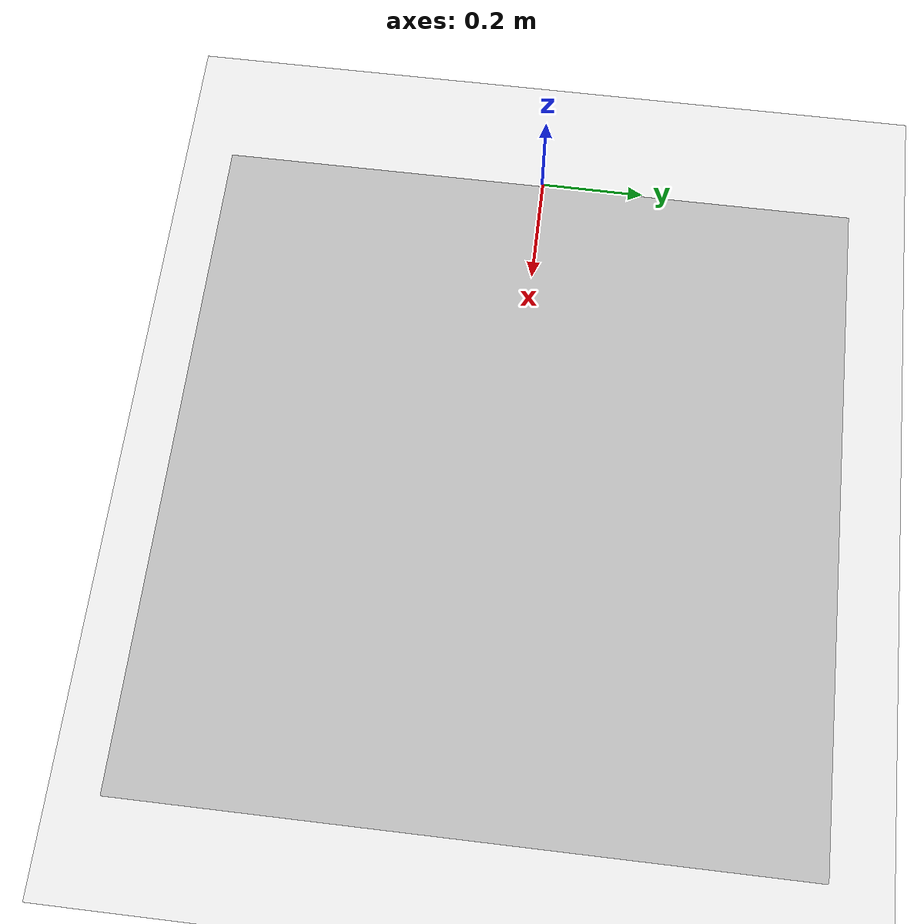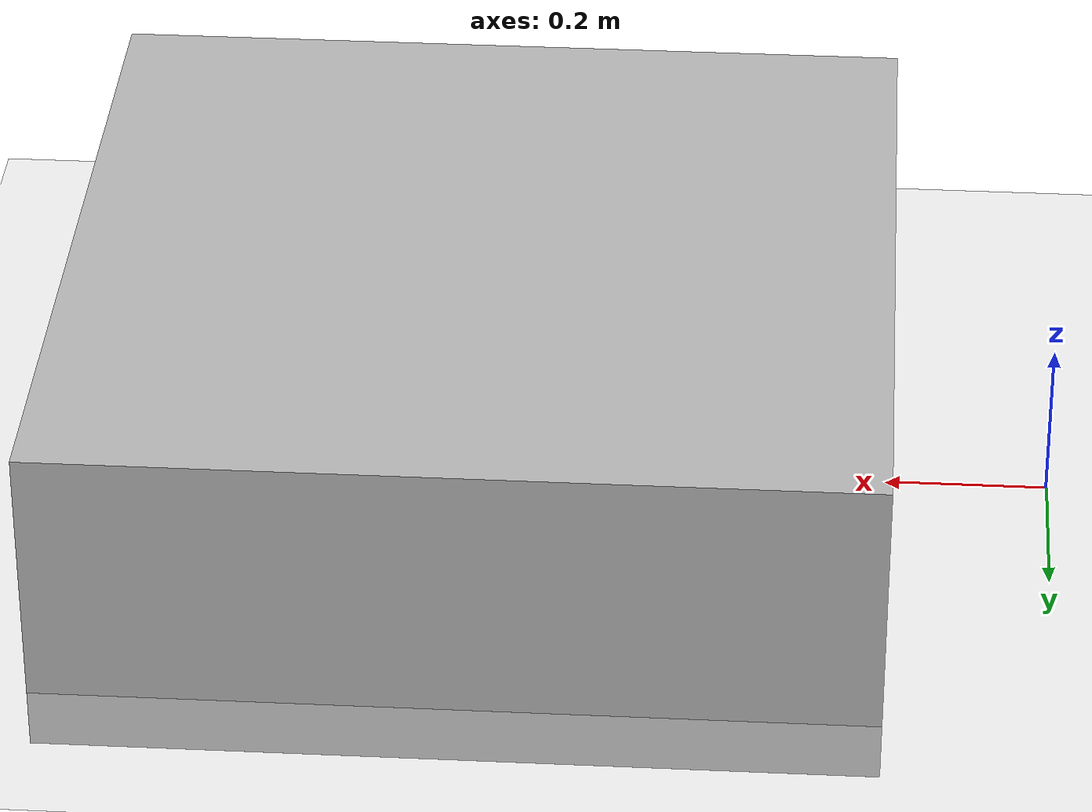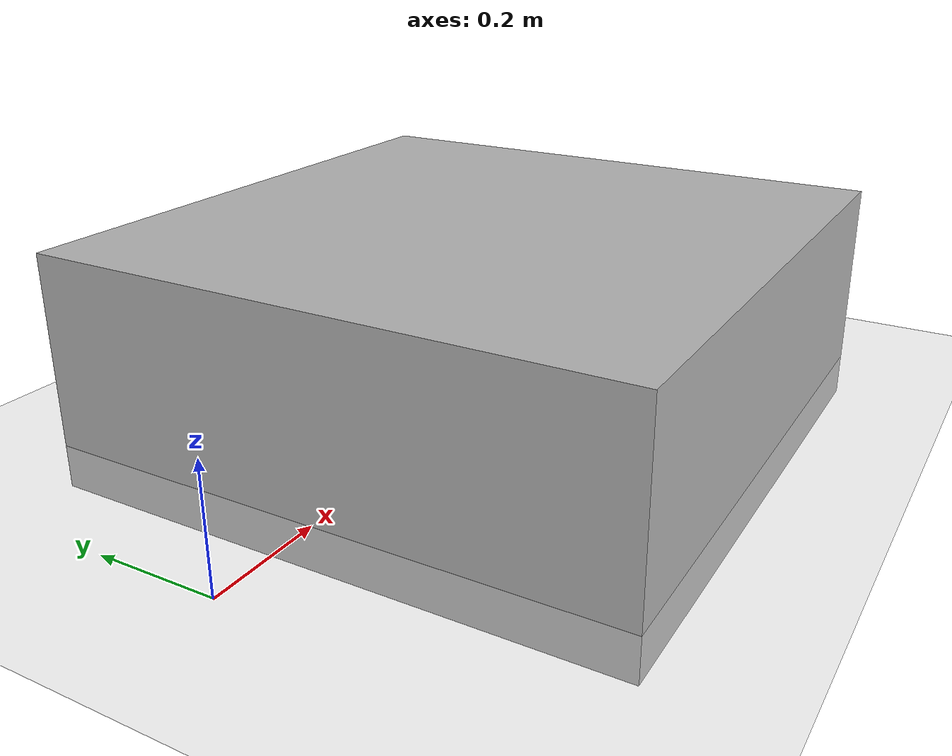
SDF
<?xml version="1.0" ?>
<sdf version="1.4">
  <world name="default">
    <include>
      <uri>model://ground_plane</uri>
    </include>
    <include>
      <uri>model://sun</uri>
    </include>
    <model name="box">
      <static>true</static>
      <link name='box'>
        <pose>0.7 0 0.125 0 0 0</pose>
        <visual name='visual'>
          <geometry>
            <box>
              <size>1.0 1.0 0.4</size>
            </box>
          </geometry>
        </visual>
      </link>
    </model>
    <physics type="ode">
      <gravity>0.0 0.0 0.0</gravity>
    </physics>
  </world>
</sdf>
